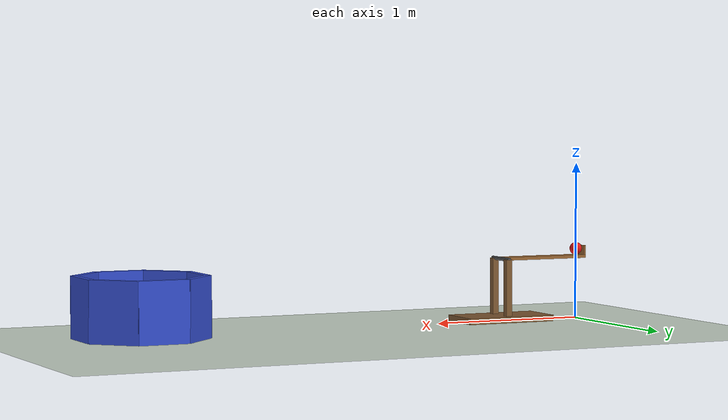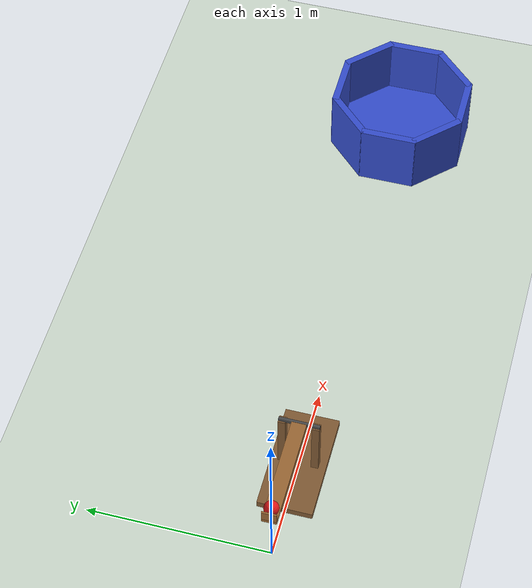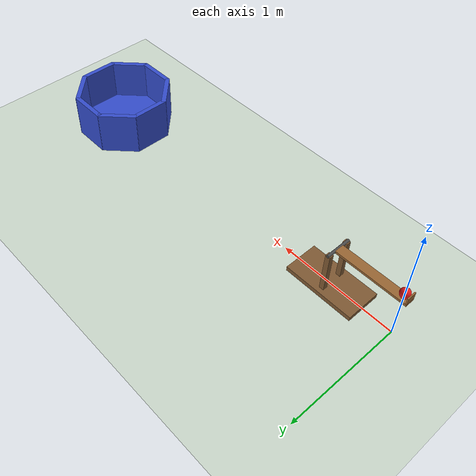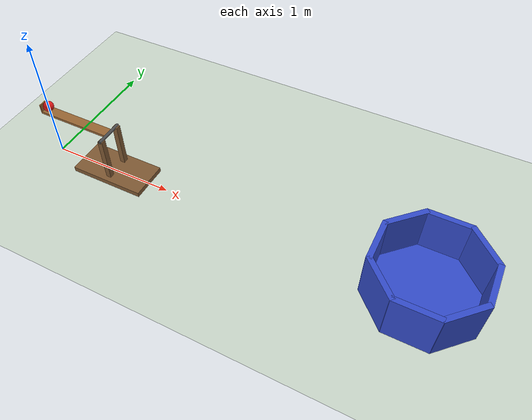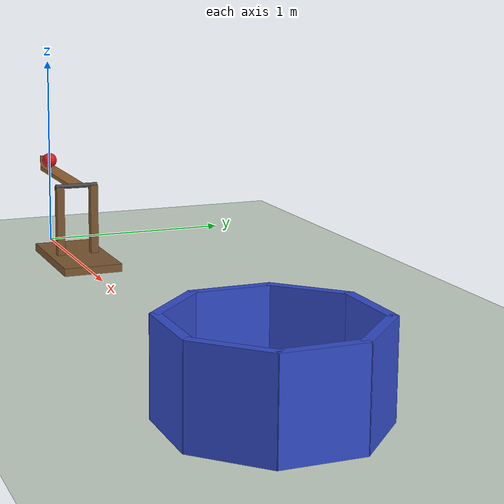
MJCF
<mujoco model="catapult_bucket">
  <compiler angle="degree"/>
  <option timestep="0.002"/>

  <worldbody>
    <light name="sun" pos="1.5 -2 4" dir="0 0.5 -1" directional="true"/>
    <geom name="floor" type="plane" size="10 10 0.1" pos="0 0 0" rgba="0.8 0.85 0.8 1"/>

    <!-- catapult frame (visual only, non-colliding) -->
    <geom name="catapult_base" type="box" pos="0.55 0 0.02" size="0.3 0.15 0.02" contype="0" conaffinity="0" rgba="0.5 0.35 0.2 1"/>
    <geom name="catapult_post_left" type="box" pos="0.55 0.09 0.2" size="0.02 0.02 0.2" contype="0" conaffinity="0" rgba="0.5 0.35 0.2 1"/>
    <geom name="catapult_post_right" type="box" pos="0.55 -0.09 0.2" size="0.02 0.02 0.2" contype="0" conaffinity="0" rgba="0.5 0.35 0.2 1"/>
    <geom name="catapult_axle" type="cylinder" fromto="0.55 -0.11 0.4 0.55 0.11 0.4" size="0.012" contype="0" conaffinity="0" rgba="0.3 0.3 0.3 1"/>

    <!-- throwing arm: pivot at (0.55,0,0.4), arm extends along local -x, ball sits on local +z face -->
    <body name="catapult_arm" pos="0.55 0 0.4">
      <joint name="catapult_hinge" type="hinge" axis="0 1 0" limited="true" range="-5 40"/>
      <geom name="catapult_arm" type="box" pos="-0.3 0 0" size="0.3 0.04 0.01" mass="0.3" rgba="0.6 0.4 0.2 1"/>
      <geom name="catapult_cup_wall" type="box" pos="-0.595 0 0.04" size="0.005 0.04 0.03" mass="0.02" rgba="0.6 0.4 0.2 1"/>
    </body>

    <!-- ball resting in the cup -->
    <body name="ball" pos="0 0 0.45">
      <freejoint name="ball_free"/>
      <geom name="ball" type="sphere" size="0.04" mass="0.1" condim="6" friction="1 0.01 0.01" solref="0.005 1" rgba="0.9 0.1 0.1 1"/>
    </body>

    <!-- bucket: octagonal tub, centre 3 m from ball start -->
    <body name="bucket" pos="3 0 0">
      <geom name="bucket_floor" type="cylinder" pos="0 0 0.02" size="0.39 0.02" solref="0.005 1" rgba="0.2 0.3 0.8 1"/>
      <geom name="bucket_wall_0" type="box" pos="0.37 0 0.19" size="0.02 0.163 0.19" euler="0 0 0" solref="0.005 1" rgba="0.2 0.3 0.8 1"/>
      <geom name="bucket_wall_45" type="box" pos="0.26163 0.26163 0.19" size="0.02 0.163 0.19" euler="0 0 45" solref="0.005 1" rgba="0.2 0.3 0.8 1"/>
      <geom name="bucket_wall_90" type="box" pos="0 0.37 0.19" size="0.02 0.163 0.19" euler="0 0 90" solref="0.005 1" rgba="0.2 0.3 0.8 1"/>
      <geom name="bucket_wall_135" type="box" pos="-0.26163 0.26163 0.19" size="0.02 0.163 0.19" euler="0 0 135" solref="0.005 1" rgba="0.2 0.3 0.8 1"/>
      <geom name="bucket_wall_180" type="box" pos="-0.37 0 0.19" size="0.02 0.163 0.19" euler="0 0 180" solref="0.005 1" rgba="0.2 0.3 0.8 1"/>
      <geom name="bucket_wall_225" type="box" pos="-0.26163 -0.26163 0.19" size="0.02 0.163 0.19" euler="0 0 225" solref="0.005 1" rgba="0.2 0.3 0.8 1"/>
      <geom name="bucket_wall_270" type="box" pos="0 -0.37 0.19" size="0.02 0.163 0.19" euler="0 0 270" solref="0.005 1" rgba="0.2 0.3 0.8 1"/>
      <geom name="bucket_wall_315" type="box" pos="0.26163 -0.26163 0.19" size="0.02 0.163 0.19" euler="0 0 315" solref="0.005 1" rgba="0.2 0.3 0.8 1"/>
    </body>
  </worldbody>

  <actuator>
    <motor name="catapult_motor" joint="catapult_hinge" gear="1" ctrllimited="true" ctrlrange="0 10"/>
  </actuator>

  <keyframe>
    <key name="start" ctrl="5.63"/>
  </keyframe>
</mujoco>
